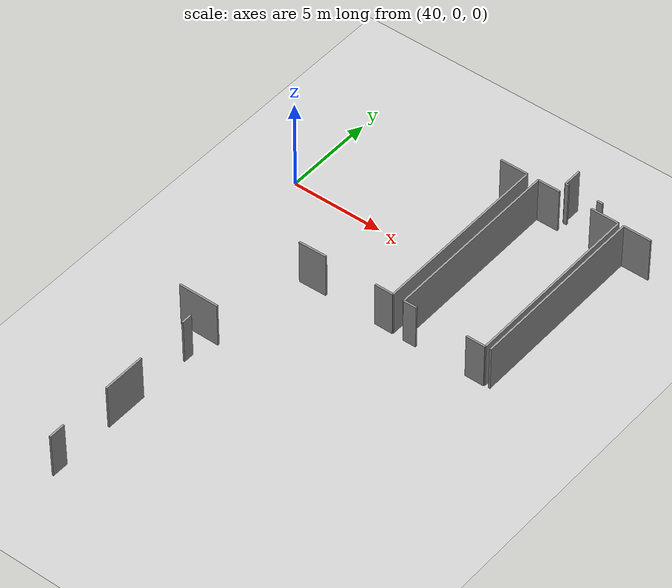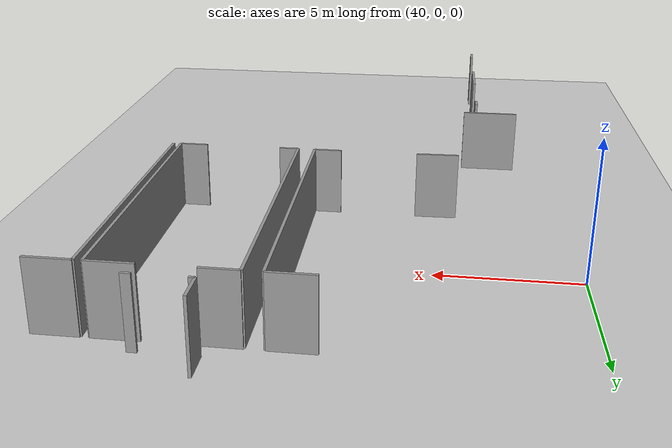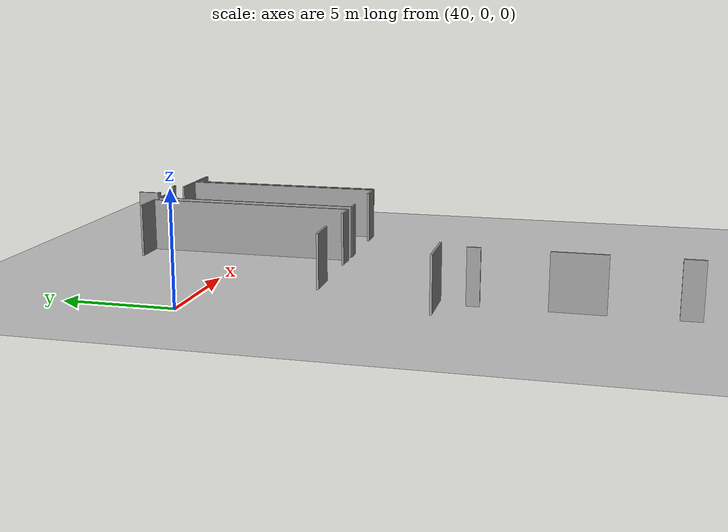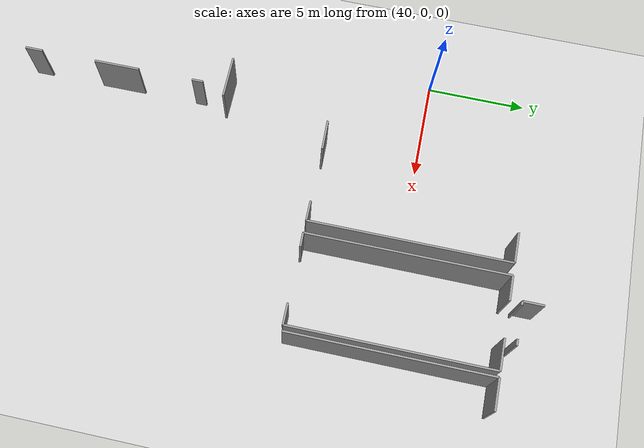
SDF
<sdf version="1.6">
 <world name="default">
  <model name="ground_plane">
   <static>1</static>
   <link name="link">
    <collision name="collision">
     <geometry><plane><normal>0 0 1</normal><size>100 100</size></plane></geometry>
     <surface><friction><ode><mu>100</mu><mu2>50</mu2></ode></friction></surface>
    </collision>
    <visual name="visual">
     <cast_shadows>0</cast_shadows>
     <geometry><plane><normal>0 0 1</normal><size>100 100</size></plane></geometry>
     <material>
      <script><uri>file://media/materials/scripts/gazebo.material</uri><name>Gazebo/Grey</name></script>
     </material>
    </visual>
   </link>
  </model>
  <model name="50055639">
   <static>1</static>
   <link name="Wall_389">
    <collision name="Wall_389_Collision">
     <geometry><box><size>0.576168775943 0.1 2.5</size></box></geometry>
     <pose>0.288084387971 0 1.25 0 0 0</pose>
    </collision>
    <visual name="Wall_389_Visual">
     <pose>0.288084387971 0 1.25 0 0 0</pose>
     <geometry><box><size>0.576168775943 0.1 2.5</size></box></geometry>
     <material>
      <script><uri>file://media/materials/scripts/gazebo.material</uri><name>Gazebo/Grey</name></script>
      <ambient>1 1 1 1</ambient>
     </material>
    </visual>
    <pose>113.765089681 -32.3219893626 0 0 0 -1.57079632679</pose>
   </link>
   <link name="Wall_390">
    <collision name="Wall_390_Collision">
     <geometry><box><size>2.32968176798 0.1 2.5</size></box></geometry>
     <pose>1.16484088399 0 1.25 0 0 0</pose>
    </collision>
    <visual name="Wall_390_Visual">
     <pose>1.16484088399 0 1.25 0 0 0</pose>
     <geometry><box><size>2.32968176798 0.1 2.5</size></box></geometry>
     <material>
      <script><uri>file://media/materials/scripts/gazebo.material</uri><name>Gazebo/Grey</name></script>
      <ambient>1 1 1 1</ambient>
     </material>
    </visual>
    <pose>113.765089681 -35.6841797941 0 0 0 -1.57079632679</pose>
   </link>
   <link name="Wall_391">
    <collision name="Wall_391_Collision">
     <geometry><box><size>0.89300448089 0.1 2.5</size></box></geometry>
     <pose>0.446502240445 0 1.25 0 0 0</pose>
    </collision>
    <visual name="Wall_391_Visual">
     <pose>0.446502240445 0 1.25 0 0 0</pose>
     <geometry><box><size>0.89300448089 0.1 2.5</size></box></geometry>
     <material>
      <script><uri>file://media/materials/scripts/gazebo.material</uri><name>Gazebo/Grey</name></script>
      <ambient>1 1 1 1</ambient>
     </material>
    </visual>
    <pose>113.765089681 -40.8077533353 0 0 0 -1.57079632679</pose>
   </link>
   <link name="Wall_401">
    <collision name="Wall_401_Collision">
     <geometry><box><size>2.17824547151 0.1 2.5</size></box></geometry>
     <pose>1.08912273575 0 1.25 0 0 0</pose>
    </collision>
    <visual name="Wall_401_Visual">
     <pose>1.08912273575 0 1.25 0 0 0</pose>
     <geometry><box><size>2.17824547151 0.1 2.5</size></box></geometry>
     <material>
      <script><uri>file://media/materials/scripts/gazebo.material</uri><name>Gazebo/Grey</name></script>
      <ambient>1 1 1 1</ambient>
     </material>
    </visual>
    <pose>114.310920423 -31.1436296475 0 0 0 3.14159265359</pose>
   </link>
   <link name="Wall_435">
    <collision name="Wall_435_Collision">
     <geometry><box><size>0.318612828292 0.1 2.5</size></box></geometry>
     <pose>0.159306414146 0 1.25 0 0 0</pose>
    </collision>
    <visual name="Wall_435_Visual">
     <pose>0.159306414146 0 1.25 0 0 0</pose>
     <geometry><box><size>0.318612828292 0.1 2.5</size></box></geometry>
     <material>
      <script><uri>file://media/materials/scripts/gazebo.material</uri><name>Gazebo/Grey</name></script>
      <ambient>1 1 1 1</ambient>
     </material>
    </visual>
    <pose>123.837570926 -15.1666560886 0 0 0 3.14159265359</pose>
   </link>
   <link name="Wall_436">
    <collision name="Wall_436_Collision">
     <geometry><box><size>0.195483567956 0.1 2.5</size></box></geometry>
     <pose>0.097741783978 0 1.25 0 0 0</pose>
    </collision>
    <visual name="Wall_436_Visual">
     <pose>0.097741783978 0 1.25 0 0 0</pose>
     <geometry><box><size>0.195483567956 0.1 2.5</size></box></geometry>
     <material>
      <script><uri>file://media/materials/scripts/gazebo.material</uri><name>Gazebo/Grey</name></script>
      <ambient>1 1 1 1</ambient>
     </material>
    </visual>
    <pose>121.913200218 -15.1666560886 0 0 0 3.14159265359</pose>
   </link>
   <link name="Wall_437">
    <collision name="Wall_437_Collision">
     <geometry><box><size>1.03530128588 0.1 2.5</size></box></geometry>
     <pose>0.517650642938 0 1.25 0 0 0</pose>
    </collision>
    <visual name="Wall_437_Visual">
     <pose>0.517650642938 0 1.25 0 0 0</pose>
     <geometry><box><size>1.03530128588 0.1 2.5</size></box></geometry>
     <material>
      <script><uri>file://media/materials/scripts/gazebo.material</uri><name>Gazebo/Grey</name></script>
      <ambient>1 1 1 1</ambient>
     </material>
    </visual>
    <pose>121.71771665 -15.1666560886 0 0 0 1.57079632679</pose>
   </link>
   <link name="Wall_511">
    <collision name="Wall_511_Collision">
     <geometry><box><size>9.94046636794 0.1 2.5</size></box></geometry>
     <pose>4.97023318397 0 1.25 0 0 0</pose>
    </collision>
    <visual name="Wall_511_Visual">
     <pose>4.97023318397 0 1.25 0 0 0</pose>
     <geometry><box><size>9.94046636794 0.1 2.5</size></box></geometry>
     <material>
      <script><uri>file://media/materials/scripts/gazebo.material</uri><name>Gazebo/Grey</name></script>
      <ambient>1 1 1 1</ambient>
     </material>
    </visual>
    <pose>125.421749451 -25.6841797941 0 0 0 1.57079632679</pose>
   </link>
   <link name="Wall_512">
    <collision name="Wall_512_Collision">
     <geometry><box><size>1.53594231965 0.1 2.5</size></box></geometry>
     <pose>0.767971159827 0 1.25 0 0 0</pose>
    </collision>
    <visual name="Wall_512_Visual">
     <pose>0.767971159827 0 1.25 0 0 0</pose>
     <geometry><box><size>1.53594231965 0.1 2.5</size></box></geometry>
     <material>
      <script><uri>file://media/materials/scripts/gazebo.material</uri><name>Gazebo/Grey</name></script>
      <ambient>1 1 1 1</ambient>
     </material>
    </visual>
    <pose>125.421749451 -15.7437134262 0 0 0 0.0</pose>
   </link>
   <link name="Wall_517">
    <collision name="Wall_517_Collision">
     <geometry><box><size>9.96115716117 0.1 2.5</size></box></geometry>
     <pose>4.98057858059 0 1.25 0 0 0</pose>
    </collision>
    <visual name="Wall_517_Visual">
     <pose>4.98057858059 0 1.25 0 0 0</pose>
     <geometry><box><size>9.96115716117 0.1 2.5</size></box></geometry>
     <material>
      <script><uri>file://media/materials/scripts/gazebo.material</uri><name>Gazebo/Grey</name></script>
      <ambient>1 1 1 1</ambient>
     </material>
    </visual>
    <pose>120.586704579 -25.7066477107 0 0 0 1.57079632679</pose>
   </link>
   <link name="Wall_518">
    <collision name="Wall_518_Collision">
     <geometry><box><size>1.23763947245 0.1 2.5</size></box></geometry>
     <pose>0.618819736224 0 1.25 0 0 0</pose>
    </collision>
    <visual name="Wall_518_Visual">
     <pose>0.618819736224 0 1.25 0 0 0</pose>
     <geometry><box><size>1.23763947245 0.1 2.5</size></box></geometry>
     <material>
      <script><uri>file://media/materials/scripts/gazebo.material</uri><name>Gazebo/Grey</name></script>
      <ambient>1 1 1 1</ambient>
     </material>
    </visual>
    <pose>120.586704579 -15.7454905495 0 0 0 0.0</pose>
   </link>
   <link name="Wall_519">
    <collision name="Wall_519_Collision">
     <geometry><box><size>1.53467294584 0.1 2.5</size></box></geometry>
     <pose>0.767336472918 0 1.25 0 0 0</pose>
    </collision>
    <visual name="Wall_519_Visual">
     <pose>0.767336472918 0 1.25 0 0 0</pose>
     <geometry><box><size>1.53467294584 0.1 2.5</size></box></geometry>
     <material>
      <script><uri>file://media/materials/scripts/gazebo.material</uri><name>Gazebo/Grey</name></script>
      <ambient>1 1 1 1</ambient>
     </material>
    </visual>
    <pose>123.601467396 -15.7454905495 0 0 0 0.0</pose>
   </link>
   <link name="Wall_520">
    <collision name="Wall_520_Collision">
     <geometry><box><size>9.9449091763 0.1 2.5</size></box></geometry>
     <pose>4.97245458815 0 1.25 0 0 0</pose>
    </collision>
    <visual name="Wall_520_Visual">
     <pose>4.97245458815 0 1.25 0 0 0</pose>
     <geometry><box><size>9.9449091763 0.1 2.5</size></box></geometry>
     <material>
      <script><uri>file://media/materials/scripts/gazebo.material</uri><name>Gazebo/Grey</name></script>
      <ambient>1 1 1 1</ambient>
     </material>
    </visual>
    <pose>125.136140342 -15.7454905495 0 0 0 -1.57079632679</pose>
   </link>
   <link name="Wall_521">
    <collision name="Wall_521_Collision">
     <geometry><box><size>1.04469465213 0.1 2.5</size></box></geometry>
     <pose>0.522347326064 0 1.25 0 0 0</pose>
    </collision>
    <visual name="Wall_521_Visual">
     <pose>0.522347326064 0 1.25 0 0 0</pose>
     <geometry><box><size>1.04469465213 0.1 2.5</size></box></geometry>
     <material>
      <script><uri>file://media/materials/scripts/gazebo.material</uri><name>Gazebo/Grey</name></script>
      <ambient>1 1 1 1</ambient>
     </material>
    </visual>
    <pose>125.136140342 -25.6903997258 0 0 0 3.14159265359</pose>
   </link>
   <link name="Wall_522">
    <collision name="Wall_522_Collision">
     <geometry><box><size>0.71103500503 0.1 2.5</size></box></geometry>
     <pose>0.355517502515 0 1.25 0 0 0</pose>
    </collision>
    <visual name="Wall_522_Visual">
     <pose>0.355517502515 0 1.25 0 0 0</pose>
     <geometry><box><size>0.71103500503 0.1 2.5</size></box></geometry>
     <material>
      <script><uri>file://media/materials/scripts/gazebo.material</uri><name>Gazebo/Grey</name></script>
      <ambient>1 1 1 1</ambient>
     </material>
    </visual>
    <pose>121.297553917 -25.6903997258 0 0 0 -3.11873949005</pose>
   </link>
   <link name="Wall_523">
    <collision name="Wall_523_Collision">
     <geometry><box><size>1.52324858147 0.1 2.5</size></box></geometry>
     <pose>0.761624290737 0 1.25 0 0 0</pose>
    </collision>
    <visual name="Wall_523_Visual">
     <pose>0.761624290737 0 1.25 0 0 0</pose>
     <geometry><box><size>1.52324858147 0.1 2.5</size></box></geometry>
     <material>
      <script><uri>file://media/materials/scripts/gazebo.material</uri><name>Gazebo/Grey</name></script>
      <ambient>1 1 1 1</ambient>
     </material>
    </visual>
    <pose>118.436385331 -15.7411746785 0 0 0 0.0</pose>
   </link>
   <link name="Wall_524">
    <collision name="Wall_524_Collision">
     <geometry><box><size>9.94922504728 0.1 2.5</size></box></geometry>
     <pose>4.97461252364 0 1.25 0 0 0</pose>
    </collision>
    <visual name="Wall_524_Visual">
     <pose>4.97461252364 0 1.25 0 0 0</pose>
     <geometry><box><size>9.94922504728 0.1 2.5</size></box></geometry>
     <material>
      <script><uri>file://media/materials/scripts/gazebo.material</uri><name>Gazebo/Grey</name></script>
      <ambient>1 1 1 1</ambient>
     </material>
    </visual>
    <pose>119.959633913 -15.7411746785 0 0 0 -1.57079632679</pose>
   </link>
   <link name="Wall_525">
    <collision name="Wall_525_Collision">
     <geometry><box><size>1.01296030668 0.1 2.5</size></box></geometry>
     <pose>0.50648015334 0 1.25 0 0 0</pose>
    </collision>
    <visual name="Wall_525_Visual">
     <pose>0.50648015334 0 1.25 0 0 0</pose>
     <geometry><box><size>1.01296030668 0.1 2.5</size></box></geometry>
     <material>
      <script><uri>file://media/materials/scripts/gazebo.material</uri><name>Gazebo/Grey</name></script>
      <ambient>1 1 1 1</ambient>
     </material>
    </visual>
    <pose>119.959633913 -25.6903997258 0 0 0 3.14159265359</pose>
   </link>
   <link name="Wall_526">
    <collision name="Wall_526_Collision">
     <geometry><box><size>1.53505277128 0.1 2.5</size></box></geometry>
     <pose>0.767526385642 0 1.25 0 0 0</pose>
    </collision>
    <visual name="Wall_526_Visual">
     <pose>0.767526385642 0 1.25 0 0 0</pose>
     <geometry><box><size>1.53505277128 0.1 2.5</size></box></geometry>
     <material>
      <script><uri>file://media/materials/scripts/gazebo.material</uri><name>Gazebo/Grey</name></script>
      <ambient>1 1 1 1</ambient>
     </material>
    </visual>
    <pose>116.129933104 -25.6903997258 0 0 0 -3.11934653089</pose>
   </link>
   <pose>-70.4 20.8983593343 0 0 0 0</pose>
  </model>
 </world>
</sdf>
